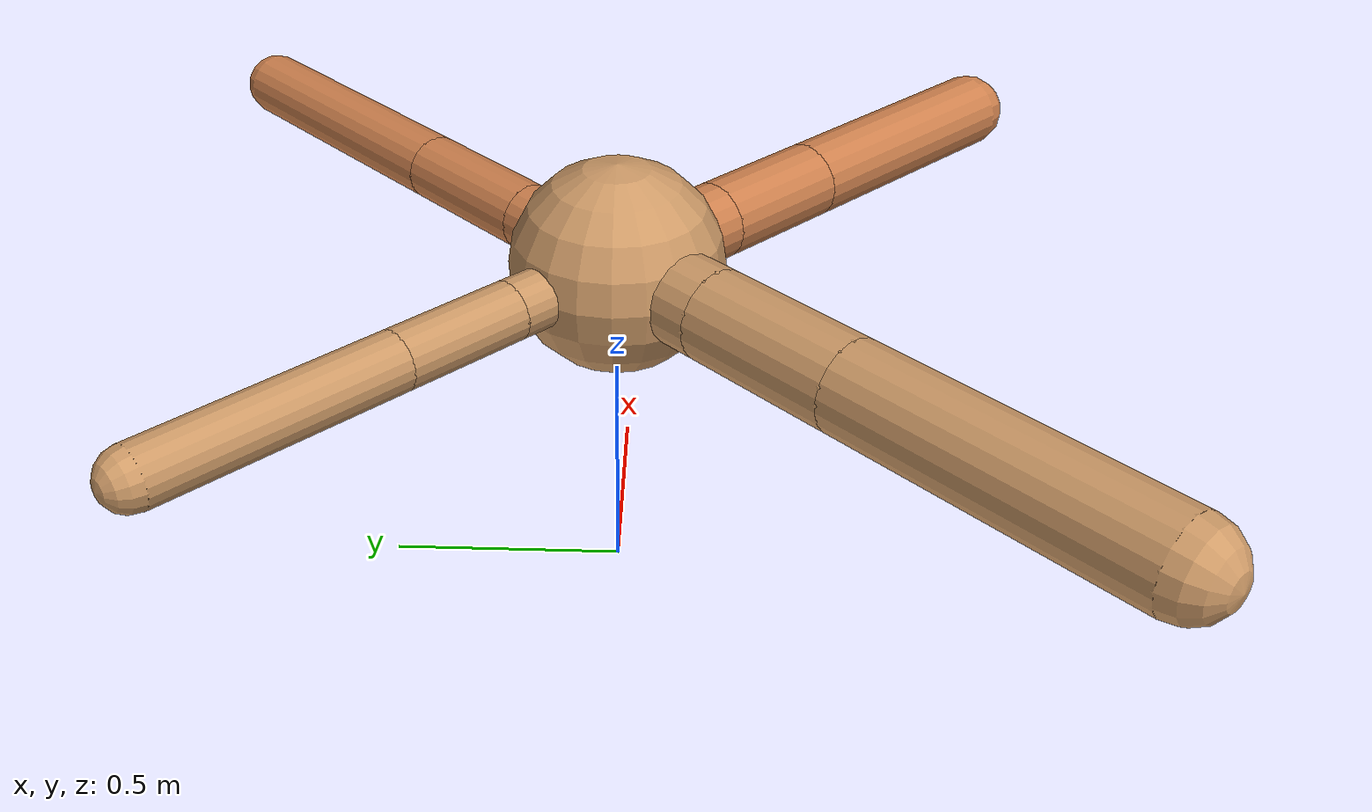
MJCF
<?xml version="1.0" ?>
<mujoco model="ant">

	<compiler angle="degree" coordinate="local" inertiafromgeom="true"/>

	<option integrator="RK4" timestep="0.01"/>

	<custom>

		<numeric data="0.0 0.0 0.55 1.0 0.0 0.0 0.0 0.0 1.0 0.0 -1.0 0.0 -1.0 0.0 1.0" name="init_qpos"/>

	</custom>

	<default>

		<joint armature="1" damping="1" limited="true"/>

		<geom conaffinity="0" condim="3" density="5.0" friction="1.5 0.1 0.1" margin="0.01" rgba="0.8 0.6 0.4 1"/>

	</default>

	<worldbody>

		<body name="torso" pos="0 0 0.75">

			<geom name="torso_geom" pos="0 0 0" size="0.22351504614472895" type="sphere"/>

			<!--joint armature="0" damping="0" limited="false" margin="0.01" name="root" pos="0 0 0" type="free"/-->

			<body name="front_left_leg" pos="0 0 0">

				<geom fromto="0 0 0 0.2 0.2 0" name="aux_1_geom" size="0.07284066130801421" type="capsule" rgba=".8 .5 .3 1"/>

				<body name="aux_1" pos="0.2 0.2 0">

					<joint axis="0 0 1" name="hip_1" pos="0.0 0.0 0.0" range="-40 40" type="hinge"/>

					<geom fromto="0 0 0 0.23552868238162195 0.23552868238162195 0" name="left_leg_geom" size="0.07284066130801421" type="capsule" rgba=".8 .5 .3 1"/>

					<body pos="0.23552868238162195 0.23552868238162195 0" name="front_left_foot">

						<joint axis="-1 1 0" name="ankle_1" pos="0.0 0.0 0.0" range="30 100" type="hinge"/>

						<geom fromto="0 0 0 0.4710573647632439 0.4710573647632439 0" name="left_ankle_geom" size="0.07284066130801421" type="capsule" rgba=".8 .5 .3 1"/>

					</body>

				</body>

			</body>

			<body name="front_right_leg" pos="0 0 0">

				<geom fromto="0 0 0 -0.2 0.2 0" name="aux_2_geom" size="0.06251790792943145" type="capsule"/>

				<body name="aux_2" pos="-0.2 0.2 0">

					<joint axis="0 0 1" name="hip_2" pos="0.0 0.0 0.0" range="-40 40" type="hinge"/>

					<geom fromto="0 0 0 -0.19024345651369545 0.19024345651369545 0" name="right_leg_geom" size="0.06251790792943145" type="capsule"/>

					<body pos="-0.19024345651369545 0.19024345651369545 0" name="front_right_foot">

						<joint axis="1 1 0" name="ankle_2" pos="0.0 0.0 0.0" range="-100 -30" type="hinge"/>

						<geom fromto="0 0 0 -0.3804869130273909 0.3804869130273909 0" name="right_ankle_geom" size="0.06251790792943145" type="capsule"/>

					</body>

				</body>

			</body>

			<body name="left_back_leg" pos="0 0 0">

				<geom fromto="0 0 0 -0.2 -0.2 0" name="aux_3_geom" size="0.09613566628390913" type="capsule"/>

				<body name="aux_3" pos="-0.2 -0.2 0">

					<joint axis="0 0 1" name="hip_3" pos="0.0 0.0 0.0" range="-40 40" type="hinge"/>

					<geom fromto="0 0 0 -0.24077020517963713 -0.24077020517963713 0" name="back_leg_geom" size="0.09613566628390913" type="capsule"/>

					<body pos="-0.24077020517963713 -0.24077020517963713 0" name="left_back_foot">

						<joint axis="-1 1 0" name="ankle_3" pos="0.0 0.0 0.0" range="-100 -30" type="hinge"/>

						<geom fromto="0 0 0 -0.48154041035927425 -0.48154041035927425 0" name="third_ankle_geom" size="0.09613566628390913" type="capsule"/>

					</body>

				</body>

			</body>

			<body name="right_back_leg" pos="0 0 0">

				<geom fromto="0 0 0 0.2 -0.2 0" name="aux_4_geom" size="0.08447982218272639" type="capsule" rgba=".8 .5 .3 1"/>

				<body name="aux_4" pos="0.2 -0.2 0">

					<joint axis="0 0 1" name="hip_4" pos="0.0 0.0 0.0" range="-40 40" type="hinge"/>

					<geom fromto="0 0 0 0.20531361828302586 -0.20531361828302586 0" name="rightback_leg_geom" size="0.08447982218272639" type="capsule" rgba=".8 .5 .3 1"/>

					<body pos="0.20531361828302586 -0.20531361828302586 0" name="right_back_foot">

						<joint axis="1 1 0" name="ankle_4" pos="0.0 0.0 0.0" range="30 100" type="hinge"/>

						<geom fromto="0 0 0 0.4106272365660517 -0.4106272365660517 0" name="fourth_ankle_geom" size="0.08447982218272639" type="capsule" rgba=".8 .5 .3 1"/>

					</body>

				</body>

			</body>

		</body>

	</worldbody>

	<actuator>

		<motor ctrllimited="true" ctrlrange="-1.0 1.0" joint="hip_4" gear="150"/>

		<motor ctrllimited="true" ctrlrange="-1.0 1.0" joint="ankle_4" gear="150"/>

		<motor ctrllimited="true" ctrlrange="-1.0 1.0" joint="hip_1" gear="150"/>

		<motor ctrllimited="true" ctrlrange="-1.0 1.0" joint="ankle_1" gear="150"/>

		<motor ctrllimited="true" ctrlrange="-1.0 1.0" joint="hip_2" gear="150"/>

		<motor ctrllimited="true" ctrlrange="-1.0 1.0" joint="ankle_2" gear="150"/>

		<motor ctrllimited="true" ctrlrange="-1.0 1.0" joint="hip_3" gear="150"/>

		<motor ctrllimited="true" ctrlrange="-1.0 1.0" joint="ankle_3" gear="150"/>

	</actuator>

</mujoco>
